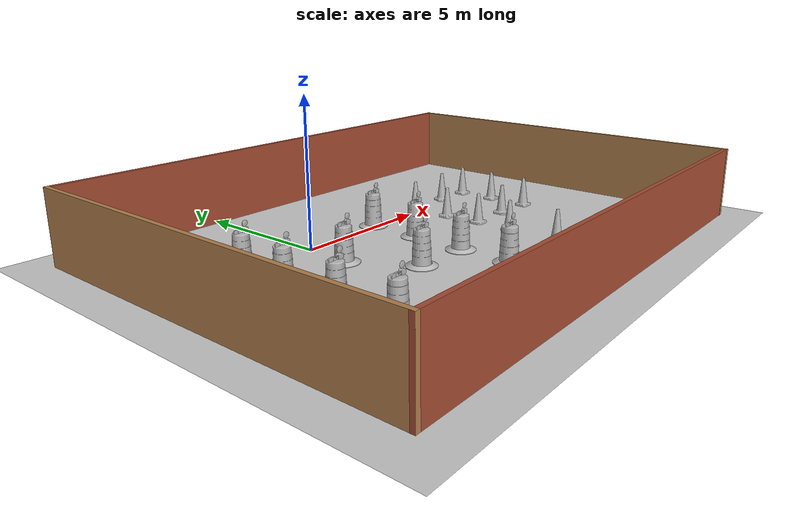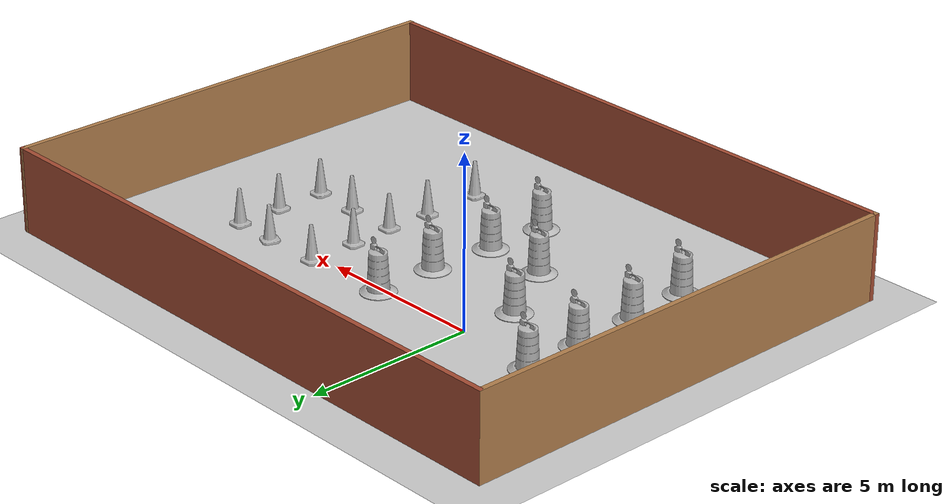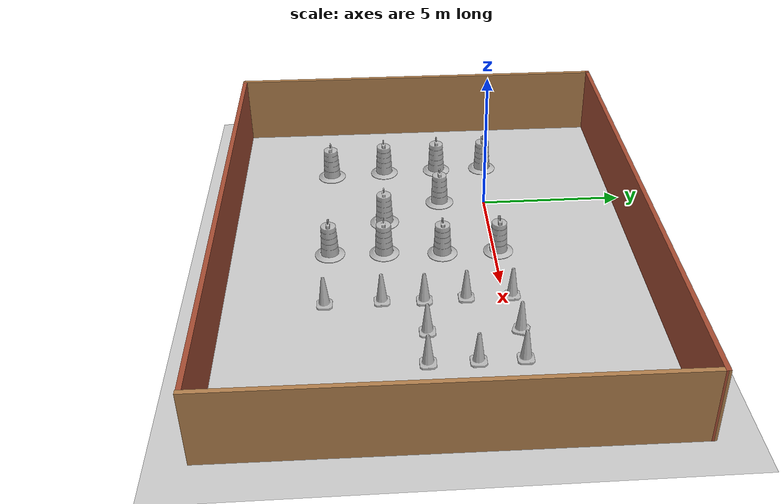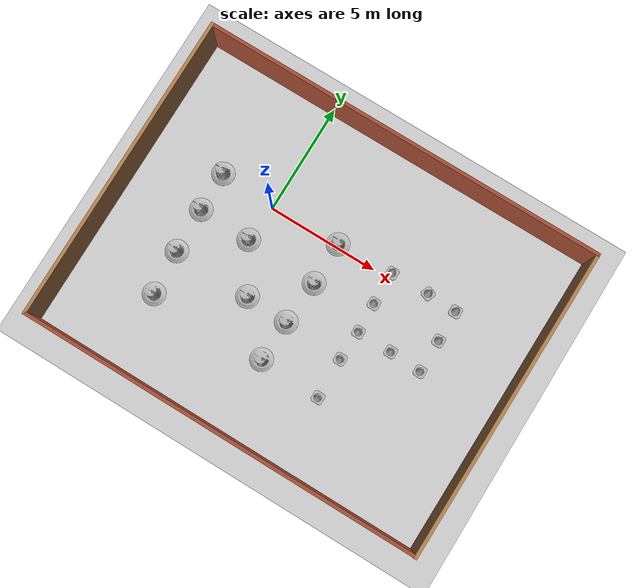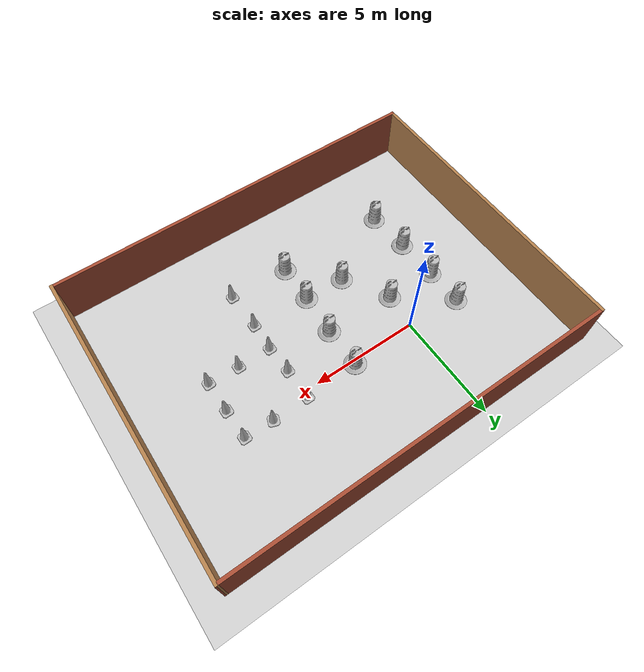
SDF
<sdf version="1.7">
 <world name="default">
  <light name="sun" type="directional">
   <pose>0 0 10 0 -0 0</pose>
   <diffuse>0.8 0.8 0.8 1</diffuse>
   <specular>0.2 0.2 0.2 1</specular>
   <attenuation>
    <range>1000</range>
    <constant>0.9</constant>
    <linear>0.01</linear>
    <quadratic>0.001</quadratic>
   </attenuation>
   <direction>-0.5 0.1 -0.9</direction>
   <spot><inner_angle>0</inner_angle><outer_angle>0</outer_angle><falloff>0</falloff></spot>
  </light>
  <model name="ground_plane">
   <static>1</static>
   <link name="link">
    <collision name="collision">
     <geometry><plane><normal>0 0 1</normal><size>100 100</size></plane></geometry>
     <surface><friction><ode><mu>100</mu><mu2>50</mu2></ode></friction></surface>
    </collision>
    <visual name="visual">
     <cast_shadows>0</cast_shadows>
     <geometry><plane><normal>0 0 1</normal><size>100 100</size></plane></geometry>
     <material>
      <script><uri>file://media/materials/scripts/gazebo.material</uri><name>Gazebo/Grey</name></script>
     </material>
    </visual>
   </link>
  </model>
  <gravity>0 0 -9.8</gravity>
  <magnetic_field>6e-06 2.3e-05 -4.2e-05</magnetic_field>
  <atmosphere type="adiabatic"/>
  <physics type="ode">
   <max_step_size>0.001</max_step_size>
   <real_time_factor>1</real_time_factor>
   <real_time_update_rate>1000</real_time_update_rate>
  </physics>
  <scene><ambient>0.4 0.4 0.4 1</ambient><background>0.7 0.7 0.7 1</background><shadows>1</shadows></scene>
  <spherical_coordinates>
   <surface_model>EARTH_WGS84</surface_model>
   <latitude_deg>0</latitude_deg>
   <longitude_deg>0</longitude_deg>
   <elevation>0</elevation>
   <heading_deg>0</heading_deg>
  </spherical_coordinates>
  <model name="Construction Cone">
   <link name="link">
    <collision name="collision">
     <geometry>
      <mesh><scale>10 10 10</scale><uri>model://construction_cone/meshes/construction_cone.dae</uri></mesh>
     </geometry>
    </collision>
    <visual name="visual">
     <geometry>
      <mesh><scale>10 10 10</scale><uri>model://construction_cone/meshes/construction_cone.dae</uri></mesh>
     </geometry>
    </visual>
    <inertial>
     <inertia><ixx>1</ixx><ixy>0</ixy><ixz>0</ixz><iyy>1</iyy><iyz>0</iyz><izz>1</izz></inertia>
     <mass>1</mass>
    </inertial>
   </link>
   <pose>5.71871 -1.19934 -0 0 -1e-06 0</pose>
  </model>
  <model name="Construction Barrel">
   <link name="link">
    <inertial>
     <pose>0 0 0.4 0 -0 0</pose>
     <mass>500</mass>
     <inertia><ixx>51.2096</ixx><iyy>51.2096</iyy><izz>25</izz><ixy>0</ixy><ixz>0</ixz><iyz>0</iyz></inertia>
    </inertial>
    <collision name="collision">
     <geometry><mesh><uri>model://construction_barrel/meshes/construction_barrel.dae</uri></mesh></geometry>
    </collision>
    <visual name="visual">
     <geometry><mesh><uri>model://construction_barrel/meshes/construction_barrel.dae</uri></mesh></geometry>
    </visual>
   </link>
   <pose>-0.137142 -1.64033 -2e-06 7e-06 -4e-06 -2.9e-05</pose>
  </model>
  <model name="Construction Barrel_0">
   <link name="link">
    <inertial>
     <pose>0 0 0.4 0 -0 0</pose>
     <mass>500</mass>
     <inertia><ixx>51.2096</ixx><iyy>51.2096</iyy><izz>25</izz><ixy>0</ixy><ixz>0</ixz><iyz>0</iyz></inertia>
    </inertial>
    <collision name="collision">
     <geometry><mesh><uri>model://construction_barrel/meshes/construction_barrel.dae</uri></mesh></geometry>
    </collision>
    <visual name="visual">
     <geometry><mesh><uri>model://construction_barrel/meshes/construction_barrel.dae</uri></mesh></geometry>
    </visual>
   </link>
   <pose>-2.53485 0.18723 -0 0 0 -4.5e-05</pose>
  </model>
  <model name="Construction Barrel_1">
   <link name="link">
    <inertial>
     <pose>0 0 0.4 0 -0 0</pose>
     <mass>500</mass>
     <inertia><ixx>51.2096</ixx><iyy>51.2096</iyy><izz>25</izz><ixy>0</ixy><ixz>0</ixz><iyz>0</iyz></inertia>
    </inertial>
    <collision name="collision">
     <geometry><mesh><uri>model://construction_barrel/meshes/construction_barrel.dae</uri></mesh></geometry>
    </collision>
    <visual name="visual">
     <geometry><mesh><uri>model://construction_barrel/meshes/construction_barrel.dae</uri></mesh></geometry>
    </visual>
   </link>
   <pose>3.15503 -1.77216 -0 0 0 -3e-05</pose>
  </model>
  <model name="Construction Cone_0">
   <link name="link">
    <collision name="collision">
     <geometry>
      <mesh><scale>10 10 10</scale><uri>model://construction_cone/meshes/construction_cone.dae</uri></mesh>
     </geometry>
    </collision>
    <visual name="visual">
     <geometry>
      <mesh><scale>10 10 10</scale><uri>model://construction_cone/meshes/construction_cone.dae</uri></mesh>
     </geometry>
    </visual>
    <inertial>
     <inertia><ixx>1</ixx><ixy>0</ixy><ixz>0</ixz><iyy>1</iyy><iyz>0</iyz><izz>1</izz></inertia>
     <mass>1</mass>
    </inertial>
   </link>
   <pose>7.42313 0.331869 -1e-05 -1e-06 -0 -0.362526</pose>
  </model>
  <model name="Construction Cone_1">
   <link name="link">
    <collision name="collision">
     <geometry>
      <mesh><scale>10 10 10</scale><uri>model://construction_cone/meshes/construction_cone.dae</uri></mesh>
     </geometry>
    </collision>
    <visual name="visual">
     <geometry>
      <mesh><scale>10 10 10</scale><uri>model://construction_cone/meshes/construction_cone.dae</uri></mesh>
     </geometry>
    </visual>
    <inertial>
     <inertia><ixx>1</ixx><ixy>0</ixy><ixz>0</ixz><iyy>1</iyy><iyz>0</iyz><izz>1</izz></inertia>
     <mass>1</mass>
    </inertial>
   </link>
   <pose>5.78496 -2.54691 -0 0 -1e-06 0</pose>
  </model>
  <model name="Construction Cone_2">
   <link name="link">
    <collision name="collision">
     <geometry>
      <mesh><scale>10 10 10</scale><uri>model://construction_cone/meshes/construction_cone.dae</uri></mesh>
     </geometry>
    </collision>
    <visual name="visual">
     <geometry>
      <mesh><scale>10 10 10</scale><uri>model://construction_cone/meshes/construction_cone.dae</uri></mesh>
     </geometry>
    </visual>
    <inertial>
     <inertia><ixx>1</ixx><ixy>0</ixy><ixz>0</ixz><iyy>1</iyy><iyz>0</iyz><izz>1</izz></inertia>
     <mass>1</mass>
    </inertial>
   </link>
   <pose>8.77071 0.282868 0 -0 -0 -0</pose>
  </model>
  <model name="Construction Barrel_clone">
   <link name="link">
    <inertial>
     <pose>0 0 0.4 0 -0 0</pose>
     <mass>500</mass>
     <inertia><ixx>51.2096</ixx><iyy>51.2096</iyy><izz>25</izz><ixy>0</ixy><ixz>0</ixz><iyz>0</iyz></inertia>
    </inertial>
    <collision name="collision">
     <geometry><mesh><uri>model://construction_barrel/meshes/construction_barrel.dae</uri></mesh></geometry>
    </collision>
    <visual name="visual">
     <geometry><mesh><uri>model://construction_barrel/meshes/construction_barrel.dae</uri></mesh></geometry>
    </visual>
   </link>
   <pose>2.96863 -5.60809 -0 0 0 -4.4e-05</pose>
  </model>
  <model name="Construction Barrel_clone_0">
   <link name="link">
    <inertial>
     <pose>0 0 0.4 0 -0 0</pose>
     <mass>500</mass>
     <inertia><ixx>51.2096</ixx><iyy>51.2096</iyy><izz>25</izz><ixy>0</ixy><ixz>0</ixz><iyz>0</iyz></inertia>
    </inertial>
    <collision name="collision">
     <geometry><mesh><uri>model://construction_barrel/meshes/construction_barrel.dae</uri></mesh></geometry>
    </collision>
    <visual name="visual">
     <geometry><mesh><uri>model://construction_barrel/meshes/construction_barrel.dae</uri></mesh></geometry>
    </visual>
   </link>
   <pose>-2.27834 -5.62894 -0 0 0 -5.2e-05</pose>
  </model>
  <model name="Construction Barrel_clone_1">
   <link name="link">
    <inertial>
     <pose>0 0 0.4 0 -0 0</pose>
     <mass>500</mass>
     <inertia><ixx>51.2096</ixx><iyy>51.2096</iyy><izz>25</izz><ixy>0</ixy><ixz>0</ixz><iyz>0</iyz></inertia>
    </inertial>
    <collision name="collision">
     <geometry><mesh><uri>model://construction_barrel/meshes/construction_barrel.dae</uri></mesh></geometry>
    </collision>
    <visual name="visual">
     <geometry><mesh><uri>model://construction_barrel/meshes/construction_barrel.dae</uri></mesh></geometry>
    </visual>
   </link>
   <pose>1.08946 -3.69488 -0 0 0 -4.1e-05</pose>
  </model>
  <model name="Construction Barrel_clone_2">
   <link name="link">
    <inertial>
     <pose>0 0 0.4 0 -0 0</pose>
     <mass>500</mass>
     <inertia><ixx>51.2096</ixx><iyy>51.2096</iyy><izz>25</izz><ixy>0</ixy><ixz>0</ixz><iyz>0</iyz></inertia>
    </inertial>
    <collision name="collision">
     <geometry><mesh><uri>model://construction_barrel/meshes/construction_barrel.dae</uri></mesh></geometry>
    </collision>
    <visual name="visual">
     <geometry><mesh><uri>model://construction_barrel/meshes/construction_barrel.dae</uri></mesh></geometry>
    </visual>
   </link>
   <pose>-2.50841 -1.5982 -2e-06 4e-06 7e-06 -3.8e-05</pose>
  </model>
  <model name="Construction Barrel_clone_3">
   <link name="link">
    <inertial>
     <pose>0 0 0.4 0 -0 0</pose>
     <mass>500</mass>
     <inertia><ixx>51.2096</ixx><iyy>51.2096</iyy><izz>25</izz><ixy>0</ixy><ixz>0</ixz><iyz>0</iyz></inertia>
    </inertial>
    <collision name="collision">
     <geometry><mesh><uri>model://construction_barrel/meshes/construction_barrel.dae</uri></mesh></geometry>
    </collision>
    <visual name="visual">
     <geometry><mesh><uri>model://construction_barrel/meshes/construction_barrel.dae</uri></mesh></geometry>
    </visual>
   </link>
   <pose>-2.4374 -3.61623 -2e-06 4e-06 7e-06 -4.9e-05</pose>
  </model>
  <model name="Construction Barrel_clone_4">
   <link name="link">
    <inertial>
     <pose>0 0 0.4 0 -0 0</pose>
     <mass>500</mass>
     <inertia><ixx>51.2096</ixx><iyy>51.2096</iyy><izz>25</izz><ixy>0</ixy><ixz>0</ixz><iyz>0</iyz></inertia>
    </inertial>
    <collision name="collision">
     <geometry><mesh><uri>model://construction_barrel/meshes/construction_barrel.dae</uri></mesh></geometry>
    </collision>
    <visual name="visual">
     <geometry><mesh><uri>model://construction_barrel/meshes/construction_barrel.dae</uri></mesh></geometry>
    </visual>
   </link>
   <pose>3.01851 -3.75624 -2e-06 4e-06 7e-06 -4.6e-05</pose>
  </model>
  <model name="Construction Barrel_clone_10">
   <link name="link">
    <inertial>
     <pose>0 0 0.4 0 -0 0</pose>
     <mass>500</mass>
     <inertia><ixx>51.2096</ixx><iyy>51.2096</iyy><izz>25</izz><ixy>0</ixy><ixz>0</ixz><iyz>0</iyz></inertia>
    </inertial>
    <collision name="collision">
     <geometry><mesh><uri>model://construction_barrel/meshes/construction_barrel.dae</uri></mesh></geometry>
    </collision>
    <visual name="visual">
     <geometry><mesh><uri>model://construction_barrel/meshes/construction_barrel.dae</uri></mesh></geometry>
    </visual>
   </link>
   <pose>3.1456 0.15157 -2e-06 7e-06 -2e-06 -0.009225</pose>
  </model>
  <model name="Construction Cone_1_clone">
   <link name="link">
    <collision name="collision">
     <geometry>
      <mesh><scale>10 10 10</scale><uri>model://construction_cone/meshes/construction_cone.dae</uri></mesh>
     </geometry>
    </collision>
    <visual name="visual">
     <geometry>
      <mesh><scale>10 10 10</scale><uri>model://construction_cone/meshes/construction_cone.dae</uri></mesh>
     </geometry>
    </visual>
    <inertial>
     <inertia><ixx>1</ixx><ixy>0</ixy><ixz>0</ixz><iyy>1</iyy><iyz>0</iyz><izz>1</izz></inertia>
     <mass>1</mass>
    </inertial>
   </link>
   <pose>5.727 -3.89895 -0 0 -1e-06 0</pose>
  </model>
  <model name="Construction Cone_1_clone_0">
   <link name="link">
    <collision name="collision">
     <geometry>
      <mesh><scale>10 10 10</scale><uri>model://construction_cone/meshes/construction_cone.dae</uri></mesh>
     </geometry>
    </collision>
    <visual name="visual">
     <geometry>
      <mesh><scale>10 10 10</scale><uri>model://construction_cone/meshes/construction_cone.dae</uri></mesh>
     </geometry>
    </visual>
    <inertial>
     <inertia><ixx>1</ixx><ixy>0</ixy><ixz>0</ixz><iyy>1</iyy><iyz>0</iyz><izz>1</izz></inertia>
     <mass>1</mass>
    </inertial>
   </link>
   <pose>5.77397 -5.72267 -0 0 -1e-06 0</pose>
  </model>
  <model name="Construction Cone_1_clone_1">
   <link name="link">
    <collision name="collision">
     <geometry>
      <mesh><scale>10 10 10</scale><uri>model://construction_cone/meshes/construction_cone.dae</uri></mesh>
     </geometry>
    </collision>
    <visual name="visual">
     <geometry>
      <mesh><scale>10 10 10</scale><uri>model://construction_cone/meshes/construction_cone.dae</uri></mesh>
     </geometry>
    </visual>
    <inertial>
     <inertia><ixx>1</ixx><ixy>0</ixy><ixz>0</ixz><iyy>1</iyy><iyz>0</iyz><izz>1</izz></inertia>
     <mass>1</mass>
    </inertial>
   </link>
   <pose>5.70042 0.288299 -0 0 -1e-06 0</pose>
  </model>
  <model name="Construction Cone_1_clone_2">
   <link name="link">
    <collision name="collision">
     <geometry>
      <mesh><scale>10 10 10</scale><uri>model://construction_cone/meshes/construction_cone.dae</uri></mesh>
     </geometry>
    </collision>
    <visual name="visual">
     <geometry>
      <mesh><scale>10 10 10</scale><uri>model://construction_cone/meshes/construction_cone.dae</uri></mesh>
     </geometry>
    </visual>
    <inertial>
     <inertia><ixx>1</ixx><ixy>0</ixy><ixz>0</ixz><iyy>1</iyy><iyz>0</iyz><izz>1</izz></inertia>
     <mass>1</mass>
    </inertial>
   </link>
   <pose>7.34344 -2.54753 -0 0 -1e-06 0</pose>
  </model>
  <model name="Construction Cone_1_clone_3">
   <link name="link">
    <collision name="collision">
     <geometry>
      <mesh><scale>10 10 10</scale><uri>model://construction_cone/meshes/construction_cone.dae</uri></mesh>
     </geometry>
    </collision>
    <visual name="visual">
     <geometry>
      <mesh><scale>10 10 10</scale><uri>model://construction_cone/meshes/construction_cone.dae</uri></mesh>
     </geometry>
    </visual>
    <inertial>
     <inertia><ixx>1</ixx><ixy>0</ixy><ixz>0</ixz><iyy>1</iyy><iyz>0</iyz><izz>1</izz></inertia>
     <mass>1</mass>
    </inertial>
   </link>
   <pose>8.79034 -2.61569 -0 0 -1e-06 0</pose>
  </model>
  <model name="Construction Cone_1_clone_4">
   <link name="link">
    <collision name="collision">
     <geometry>
      <mesh><scale>10 10 10</scale><uri>model://construction_cone/meshes/construction_cone.dae</uri></mesh>
     </geometry>
    </collision>
    <visual name="visual">
     <geometry>
      <mesh><scale>10 10 10</scale><uri>model://construction_cone/meshes/construction_cone.dae</uri></mesh>
     </geometry>
    </visual>
    <inertial>
     <inertia><ixx>1</ixx><ixy>0</ixy><ixz>0</ixz><iyy>1</iyy><iyz>0</iyz><izz>1</izz></inertia>
     <mass>1</mass>
    </inertial>
   </link>
   <pose>8.79336 -1.12265 -0 0 -1e-06 0</pose>
  </model>
  <model name="Untitled_0">
   <pose>3.27365 -2.10363 0 0 -0 0</pose>
   <link name="Wall_10">
    <collision name="Wall_10_Collision">
     <geometry><box><size>18.25 0.15 2.5</size></box></geometry>
     <pose>0 0 1.25 0 -0 0</pose>
    </collision>
    <visual name="Wall_10_Visual">
     <pose>0 0 1.25 0 -0 0</pose>
     <geometry><box><size>18.25 0.15 2.5</size></box></geometry>
     <material>
      <script><uri>file://media/materials/scripts/gazebo.material</uri><name>Gazebo/Bricks</name></script>
      <ambient>1 1 1 1</ambient>
     </material>
     <meta><layer>0</layer></meta>
    </visual>
    <pose>-0.000317 6.93253 0 0 -0 3.14159</pose>
   </link>
   <link name="Wall_12">
    <collision name="Wall_12_Collision">
     <geometry><box><size>14.0156 0.15 2.5</size></box></geometry>
     <pose>0 0 1.25 0 -0 0</pose>
    </collision>
    <visual name="Wall_12_Visual">
     <pose>0 0 1.25 0 -0 0</pose>
     <geometry><box><size>14.0156 0.15 2.5</size></box></geometry>
     <material>
      <script><uri>file://media/materials/scripts/gazebo.material</uri><name>Gazebo/Wood</name></script>
      <ambient>1 1 1 1</ambient>
     </material>
     <meta><layer>0</layer></meta>
    </visual>
    <pose>8.99083 0 0 0 -0 -1.57929</pose>
   </link>
   <link name="Wall_6">
    <collision name="Wall_6_Collision">
     <geometry><box><size>14 0.15 2.5</size></box></geometry>
     <pose>0 0 1.25 0 -0 0</pose>
    </collision>
    <visual name="Wall_6_Visual">
     <pose>0 0 1.25 0 -0 0</pose>
     <geometry><box><size>14 0.15 2.5</size></box></geometry>
     <material>
      <script><uri>file://media/materials/scripts/gazebo.material</uri><name>Gazebo/Wood</name></script>
      <ambient>1 1 1 1</ambient>
     </material>
     <meta><layer>0</layer></meta>
    </visual>
    <pose>-9.05032 0.007527 0 0 -0 1.5708</pose>
   </link>
   <link name="Wall_8">
    <collision name="Wall_8_Collision">
     <geometry><box><size>18 0.15 2.5</size></box></geometry>
     <pose>0 0 1.25 0 -0 0</pose>
    </collision>
    <visual name="Wall_8_Visual">
     <pose>0 0 1.25 0 -0 0</pose>
     <geometry><box><size>18 0.15 2.5</size></box></geometry>
     <material>
      <script><uri>file://media/materials/scripts/gazebo.material</uri><name>Gazebo/Bricks</name></script>
      <ambient>1 1 1 1</ambient>
     </material>
     <meta><layer>0</layer></meta>
    </visual>
    <pose>-0.125317 -6.91747 0 0 -0 3.14159</pose>
   </link>
   <static>1</static>
  </model>
 </world>
</sdf>
